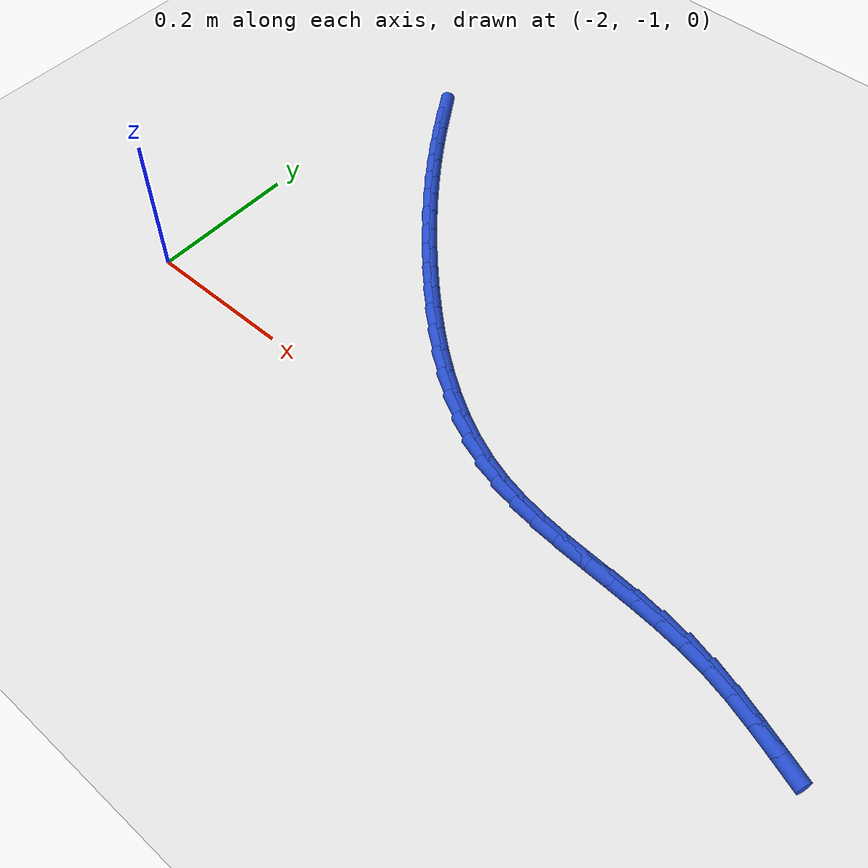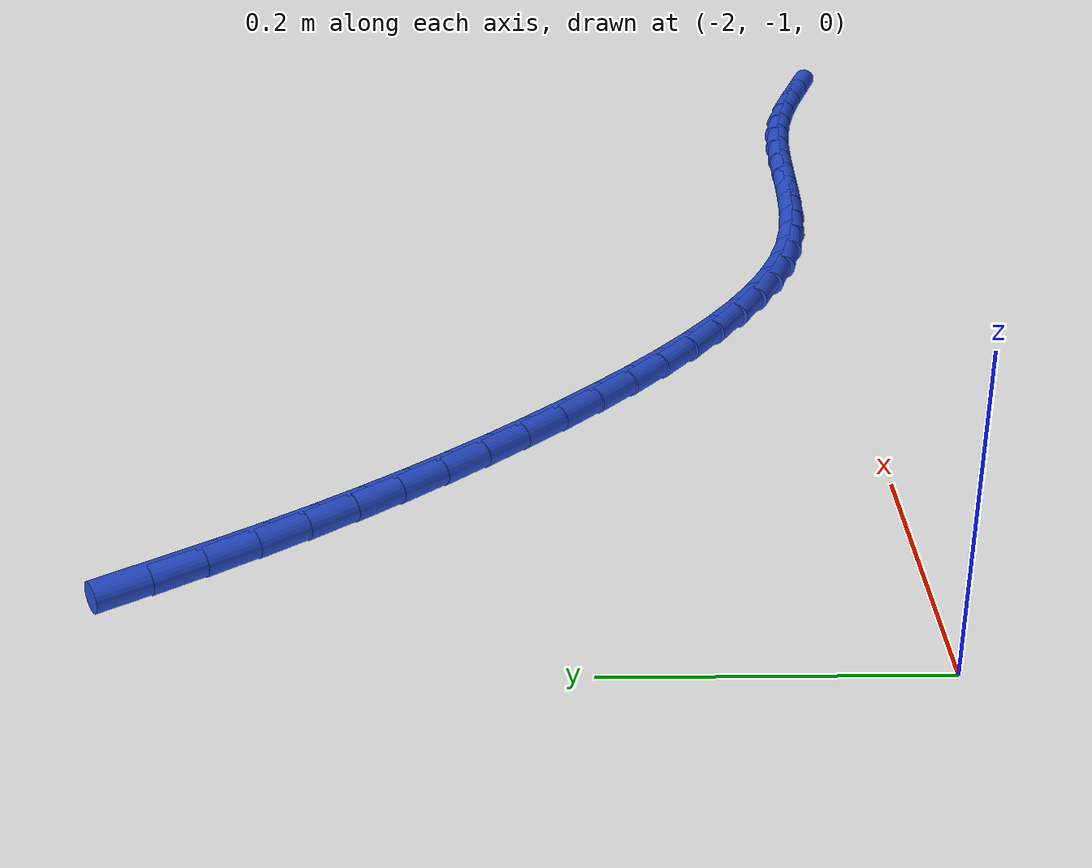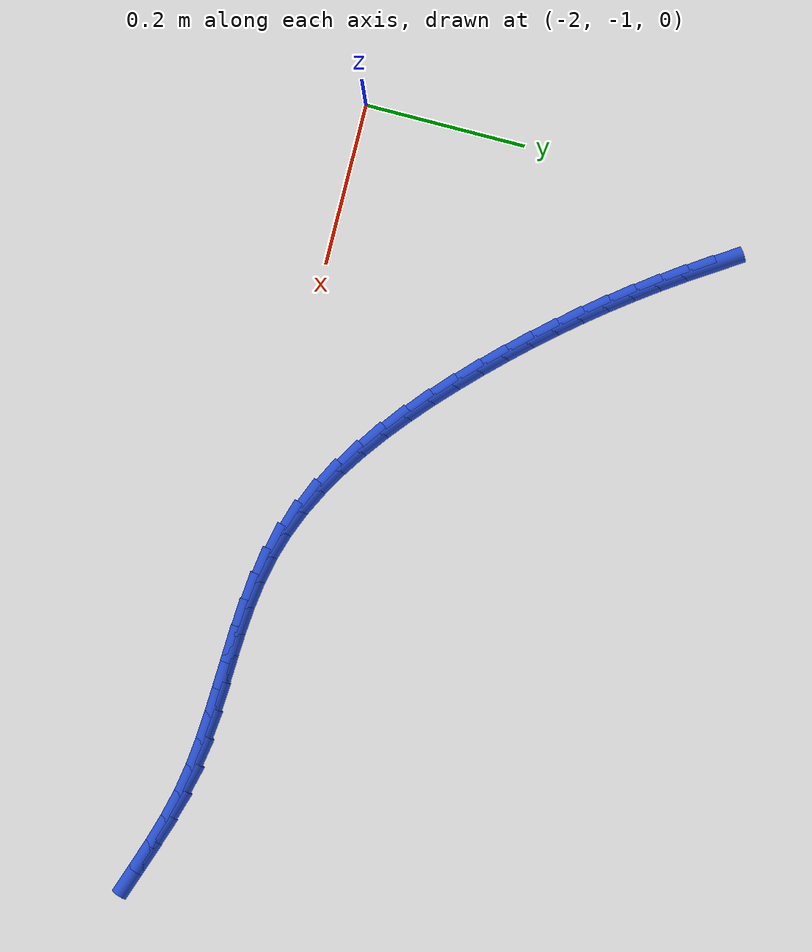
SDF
<sdf version="1.6">
 <world name="default">
  <model name="ground_plane">
   <static>1</static>
   <link name="link">
    <collision name="collision">
     <geometry><plane><normal>0 0 1</normal><size>100 100</size></plane></geometry>
     <surface><friction><ode><mu>100</mu><mu2>50</mu2></ode></friction></surface>
    </collision>
    <visual name="visual">
     <cast_shadows>0</cast_shadows>
     <geometry><plane><normal>0 0 1</normal><size>100 100</size></plane></geometry>
     <material>
      <script><uri>file://media/materials/scripts/gazebo.material</uri><name>Gazebo/WhiteGlow</name></script>
     </material>
    </visual>
   </link>
  </model>
  <model name="line">
   <link name="link_111">
    <pose>-1.9143856149538372 -0.5440257737730076 0.01 0 1.57 -0.9950030704382614</pose>
    <collision name="collision">
     <geometry><cylinder><radius>0.01</radius><length>0.08</length></cylinder></geometry>
    </collision>
    <visual name="visual">
     <material>
      <script><name>Gazebo/Blue</name><uri>file://media/materials/scripts/gazebo.material</uri></script>
     </material>
     <geometry><cylinder><radius>0.01</radius><length>0.08</length></cylinder></geometry>
    </visual>
   </link>
   <link name="link_112">
    <pose>-1.895645241447829 -0.5728938703207692 0.01 0 1.57 -0.9721743037767574</pose>
    <collision name="collision">
     <geometry><cylinder><radius>0.01</radius><length>0.08</length></cylinder></geometry>
    </collision>
    <visual name="visual">
     <material>
      <script><name>Gazebo/Blue</name><uri>file://media/materials/scripts/gazebo.material</uri></script>
     </material>
     <geometry><cylinder><radius>0.01</radius><length>0.08</length></cylinder></geometry>
    </visual>
   </link>
   <link name="link_113">
    <pose>-1.8763509122130106 -0.6011798735566575 0.01 0 1.57 -0.9489724081350819</pose>
    <collision name="collision">
     <geometry><cylinder><radius>0.01</radius><length>0.08</length></cylinder></geometry>
    </collision>
    <visual name="visual">
     <material>
      <script><name>Gazebo/Blue</name><uri>file://media/materials/scripts/gazebo.material</uri></script>
     </material>
     <geometry><cylinder><radius>0.01</radius><length>0.08</length></cylinder></geometry>
    </visual>
   </link>
   <link name="link_114">
    <pose>-1.8564735999047404 -0.6289156797982957 0.01 0 1.57 -0.9255059877517859</pose>
    <collision name="collision">
     <geometry><cylinder><radius>0.01</radius><length>0.08</length></cylinder></geometry>
    </collision>
    <visual name="visual">
     <material>
      <script><name>Gazebo/Blue</name><uri>file://media/materials/scripts/gazebo.material</uri></script>
     </material>
     <geometry><cylinder><radius>0.01</radius><length>0.08</length></cylinder></geometry>
    </visual>
   </link>
   <link name="link_115">
    <pose>-1.835984277178377 -0.6561331853633077 0.01 0 1.57 -0.9018882095244813</pose>
    <collision name="collision">
     <geometry><cylinder><radius>0.01</radius><length>0.08</length></cylinder></geometry>
    </collision>
    <visual name="visual">
     <material>
      <script><name>Gazebo/Blue</name><uri>file://media/materials/scripts/gazebo.material</uri></script>
     </material>
     <geometry><cylinder><radius>0.01</radius><length>0.08</length></cylinder></geometry>
    </visual>
   </link>
   <link name="link_116">
    <pose>-1.8148539166892776 -0.6828642865693173 0.01 0 1.57 -0.8782346337224162</pose>
    <collision name="collision">
     <geometry><cylinder><radius>0.01</radius><length>0.08</length></cylinder></geometry>
    </collision>
    <visual name="visual">
     <material>
      <script><name>Gazebo/Blue</name><uri>file://media/materials/scripts/gazebo.material</uri></script>
     </material>
     <geometry><cylinder><radius>0.01</radius><length>0.08</length></cylinder></geometry>
    </visual>
   </link>
   <link name="link_117">
    <pose>-1.7930534910928024 -0.7091408797339489 0.01 0 1.57 -0.8546609376189348</pose>
    <collision name="collision">
     <geometry><cylinder><radius>0.01</radius><length>0.08</length></cylinder></geometry>
    </collision>
    <visual name="visual">
     <material>
      <script><name>Gazebo/Blue</name><uri>file://media/materials/scripts/gazebo.material</uri></script>
     </material>
     <geometry><cylinder><radius>0.01</radius><length>0.08</length></cylinder></geometry>
    </visual>
   </link>
   <link name="link_118">
    <pose>-1.7705539730443092 -0.7349948611748257 0.01 0 1.57 -0.8312806378524545</pose>
    <collision name="collision">
     <geometry><cylinder><radius>0.01</radius><length>0.08</length></cylinder></geometry>
    </collision>
    <visual name="visual">
     <material>
      <script><name>Gazebo/Blue</name><uri>file://media/materials/scripts/gazebo.material</uri></script>
     </material>
     <geometry><cylinder><radius>0.01</radius><length>0.08</length></cylinder></geometry>
    </visual>
   </link>
   <link name="link_119">
    <pose>-1.7473263351991564 -0.7604581272095727 0.01 0 1.57 -0.8082029173738624</pose>
    <collision name="collision">
     <geometry><cylinder><radius>0.01</radius><length>0.08</length></cylinder></geometry>
    </collision>
    <visual name="visual">
     <material>
      <script><name>Gazebo/Blue</name><uri>file://media/materials/scripts/gazebo.material</uri></script>
     </material>
     <geometry><cylinder><radius>0.01</radius><length>0.08</length></cylinder></geometry>
    </visual>
   </link>
   <link name="link_120">
    <pose>-1.7233415502127016 -0.7855625741558135 0.01 0 1.57 -0.7854421807367972</pose>
    <collision name="collision">
     <geometry><cylinder><radius>0.01</radius><length>0.08</length></cylinder></geometry>
    </collision>
    <visual name="visual">
     <material>
      <script><name>Gazebo/Blue</name><uri>file://media/materials/scripts/gazebo.material</uri></script>
     </material>
     <geometry><cylinder><radius>0.01</radius><length>0.08</length></cylinder></geometry>
    </visual>
   </link>
   <link name="link_121">
    <pose>-1.698571055749104 -0.810335249377925 0.01 0 1.57 -0.7603612839941395</pose>
    <collision name="collision">
     <geometry><cylinder><radius>0.01</radius><length>0.08</length></cylinder></geometry>
    </collision>
    <visual name="visual">
     <material>
      <script><name>Gazebo/Blue</name><uri>file://media/materials/scripts/gazebo.material</uri></script>
     </material>
     <geometry><cylinder><radius>0.01</radius><length>0.08</length></cylinder></geometry>
    </visual>
   </link>
   <link name="link_122">
    <pose>-1.6730003529587951 -0.8346565509992507 0.01 0 1.57 -0.7296373215239756</pose>
    <collision name="collision">
     <geometry><cylinder><radius>0.01</radius><length>0.08</length></cylinder></geometry>
    </collision>
    <visual name="visual">
     <material>
      <script><name>Gazebo/Blue</name><uri>file://media/materials/scripts/gazebo.material</uri></script>
     </material>
     <geometry><cylinder><radius>0.01</radius><length>0.08</length></cylinder></geometry>
    </visual>
   </link>
   <link name="link_123">
    <pose>-1.6466311793925577 -0.8582375694948543 0.01 0 1.57 -0.6926689197947699</pose>
    <collision name="collision">
     <geometry><cylinder><radius>0.01</radius><length>0.08</length></cylinder></geometry>
    </collision>
    <visual name="visual">
     <material>
      <script><name>Gazebo/Blue</name><uri>file://media/materials/scripts/gazebo.material</uri></script>
     </material>
     <geometry><cylinder><radius>0.01</radius><length>0.08</length></cylinder></geometry>
    </visual>
   </link>
   <link name="link_124">
    <pose>-1.6194661750068495 -0.8807799853609911 0.01 0 1.57 -0.648900846392343</pose>
    <collision name="collision">
     <geometry><cylinder><radius>0.01</radius><length>0.08</length></cylinder></geometry>
    </collision>
    <visual name="visual">
     <material>
      <script><name>Gazebo/Blue</name><uri>file://media/materials/scripts/gazebo.material</uri></script>
     </material>
     <geometry><cylinder><radius>0.01</radius><length>0.08</length></cylinder></geometry>
    </visual>
   </link>
   <link name="link_125">
    <pose>-1.5915079797581295 -0.9019854790939161 0.01 0 1.57 -0.597678475880425</pose>
    <collision name="collision">
     <geometry><cylinder><radius>0.01</radius><length>0.08</length></cylinder></geometry>
    </collision>
    <visual name="visual">
     <material>
      <script><name>Gazebo/Blue</name><uri>file://media/materials/scripts/gazebo.material</uri></script>
     </material>
     <geometry><cylinder><radius>0.01</radius><length>0.08</length></cylinder></geometry>
    </visual>
   </link>
   <link name="link_126">
    <pose>-1.562759233602856 -0.9215557311898863 0.01 0 1.57 -0.5382932289902106</pose>
    <collision name="collision">
     <geometry><cylinder><radius>0.01</radius><length>0.08</length></cylinder></geometry>
    </collision>
    <visual name="visual">
     <material>
      <script><name>Gazebo/Blue</name><uri>file://media/materials/scripts/gazebo.material</uri></script>
     </material>
     <geometry><cylinder><radius>0.01</radius><length>0.08</length></cylinder></geometry>
    </visual>
   </link>
   <link name="link_127">
    <pose>-1.5332225764974892 -0.9391924221451566 0.01 0 1.57 -0.47006042147608235</pose>
    <collision name="collision">
     <geometry><cylinder><radius>0.01</radius><length>0.08</length></cylinder></geometry>
    </collision>
    <visual name="visual">
     <material>
      <script><name>Gazebo/Blue</name><uri>file://media/materials/scripts/gazebo.material</uri></script>
     </material>
     <geometry><cylinder><radius>0.01</radius><length>0.08</length></cylinder></geometry>
    </visual>
   </link>
   <link name="link_128">
    <pose>-1.5029006483984868 -0.9545972324559828 0.01 0 1.57 -0.39244329825378166</pose>
    <collision name="collision">
     <geometry><cylinder><radius>0.01</radius><length>0.08</length></cylinder></geometry>
    </collision>
    <visual name="visual">
     <material>
      <script><name>Gazebo/Blue</name><uri>file://media/materials/scripts/gazebo.material</uri></script>
     </material>
     <geometry><cylinder><radius>0.01</radius><length>0.08</length></cylinder></geometry>
    </visual>
   </link>
   <link name="link_129">
    <pose>-1.4717960892623085 -0.9674718426186206 0.01 0 1.57 -0.3052532861984801</pose>
    <collision name="collision">
     <geometry><cylinder><radius>0.01</radius><length>0.08</length></cylinder></geometry>
    </collision>
    <visual name="visual">
     <material>
      <script><name>Gazebo/Blue</name><uri>file://media/materials/scripts/gazebo.material</uri></script>
     </material>
     <geometry><cylinder><radius>0.01</radius><length>0.08</length></cylinder></geometry>
    </visual>
   </link>
   <link name="link_130">
    <pose>-1.4399116326674373 -0.977518687151683 0.01 0 1.57 -0.21614035548010685</pose>
    <collision name="collision">
     <geometry><cylinder><radius>0.01</radius><length>0.08</length></cylinder></geometry>
    </collision>
    <visual name="visual">
     <material>
      <script><name>Gazebo/Blue</name><uri>file://media/materials/scripts/gazebo.material</uri></script>
     </material>
     <geometry><cylinder><radius>0.01</radius><length>0.08</length></cylinder></geometry>
    </visual>
   </link>
   <link name="link_131">
    <pose>-1.407280230068295 -0.9846835723026276 0.01 0 1.57 -0.14386438074132676</pose>
    <collision name="collision">
     <geometry><cylinder><radius>0.01</radius><length>0.08</length></cylinder></geometry>
    </collision>
    <visual name="visual">
     <material>
      <script><name>Gazebo/Blue</name><uri>file://media/materials/scripts/gazebo.material</uri></script>
     </material>
     <geometry><cylinder><radius>0.01</radius><length>0.08</length></cylinder></geometry>
    </visual>
   </link>
   <link name="link_132">
    <pose>-1.3740082409467183 -0.9895035251770637 0.01 0 1.57 -0.09147557535720244</pose>
    <collision name="collision">
     <geometry><cylinder><radius>0.01</radius><length>0.08</length></cylinder></geometry>
    </collision>
    <visual name="visual">
     <material>
      <script><name>Gazebo/Blue</name><uri>file://media/materials/scripts/gazebo.material</uri></script>
     </material>
     <geometry><cylinder><radius>0.01</radius><length>0.08</length></cylinder></geometry>
    </visual>
   </link>
   <link name="link_133">
    <pose>-1.340212957021709 -0.9926036200174934 0.01 0 1.57 -0.05856556902464326</pose>
    <collision name="collision">
     <geometry><cylinder><radius>0.01</radius><length>0.08</length></cylinder></geometry>
    </collision>
    <visual name="visual">
     <material>
      <script><name>Gazebo/Blue</name><uri>file://media/materials/scripts/gazebo.material</uri></script>
     </material>
     <geometry><cylinder><radius>0.01</radius><length>0.08</length></cylinder></geometry>
    </visual>
   </link>
   <link name="link_134">
    <pose>-1.3060116700122693 -0.9946089310664161 0.01 0 1.57 -0.0444937112199723</pose>
    <collision name="collision">
     <geometry><cylinder><radius>0.01</radius><length>0.08</length></cylinder></geometry>
    </collision>
    <visual name="visual">
     <material>
      <script><name>Gazebo/Blue</name><uri>file://media/materials/scripts/gazebo.material</uri></script>
     </material>
     <geometry><cylinder><radius>0.01</radius><length>0.08</length></cylinder></geometry>
    </visual>
   </link>
   <link name="link_135">
    <pose>-1.2715216716374023 -0.996144532566334 0.01 0 1.57 -0.04874660939137345</pose>
    <collision name="collision">
     <geometry><cylinder><radius>0.01</radius><length>0.08</length></cylinder></geometry>
    </collision>
    <visual name="visual">
     <material>
      <script><name>Gazebo/Blue</name><uri>file://media/materials/scripts/gazebo.material</uri></script>
     </material>
     <geometry><cylinder><radius>0.01</radius><length>0.08</length></cylinder></geometry>
    </visual>
   </link>
   <link name="link_136">
    <pose>-1.2368602536161095 -0.9978354987597471 0.01 0 1.57 -0.07107025550663781</pose>
    <collision name="collision">
     <geometry><cylinder><radius>0.01</radius><length>0.08</length></cylinder></geometry>
    </collision>
    <visual name="visual">
     <material>
      <script><name>Gazebo/Blue</name><uri>file://media/materials/scripts/gazebo.material</uri></script>
     </material>
     <geometry><cylinder><radius>0.01</radius><length>0.08</length></cylinder></geometry>
    </visual>
   </link>
   <link name="link_137">
    <pose>-1.2021447076673941 -1.000306903889157 0.01 0 1.57 -0.1114169482223777</pose>
    <collision name="collision">
     <geometry><cylinder><radius>0.01</radius><length>0.08</length></cylinder></geometry>
    </collision>
    <visual name="visual">
     <material>
      <script><name>Gazebo/Blue</name><uri>file://media/materials/scripts/gazebo.material</uri></script>
     </material>
     <geometry><cylinder><radius>0.01</radius><length>0.08</length></cylinder></geometry>
    </visual>
   </link>
   <link name="link_138">
    <pose>-1.1674923255102583 -1.004183822197064 0.01 0 1.57 -0.16972282996792265</pose>
    <collision name="collision">
     <geometry><cylinder><radius>0.01</radius><length>0.08</length></cylinder></geometry>
    </collision>
    <visual name="visual">
     <material>
      <script><name>Gazebo/Blue</name><uri>file://media/materials/scripts/gazebo.material</uri></script>
     </material>
     <geometry><cylinder><radius>0.01</radius><length>0.08</length></cylinder></geometry>
    </visual>
   </link>
   <link name="link_139">
    <pose>-1.1330203988637055 -1.01009132792597 0.01 0 1.57 -0.2411461873965816</pose>
    <collision name="collision">
     <geometry><cylinder><radius>0.01</radius><length>0.08</length></cylinder></geometry>
    </collision>
    <visual name="visual">
     <material>
      <script><name>Gazebo/Blue</name><uri>file://media/materials/scripts/gazebo.material</uri></script>
     </material>
     <geometry><cylinder><radius>0.01</radius><length>0.08</length></cylinder></geometry>
    </visual>
   </link>
   <link name="link_140">
    <pose>-1.0988335554662694 -1.018498962333097 0.01 0 1.57 -0.29767804407295023</pose>
    <collision name="collision">
     <geometry><cylinder><radius>0.01</radius><length>0.08</length></cylinder></geometry>
    </collision>
    <visual name="visual">
     <material>
      <script><name>Gazebo/Blue</name><uri>file://media/materials/scripts/gazebo.material</uri></script>
     </material>
     <geometry><cylinder><radius>0.01</radius><length>0.08</length></cylinder></geometry>
    </visual>
   </link>
   <link name="link_141">
    <pose>-1.0649563051845432 -1.0288922970754497 0.01 0 1.57 -0.32949012639443476</pose>
    <collision name="collision">
     <geometry><cylinder><radius>0.01</radius><length>0.08</length></cylinder></geometry>
    </collision>
    <visual name="visual">
     <material>
      <script><name>Gazebo/Blue</name><uri>file://media/materials/scripts/gazebo.material</uri></script>
     </material>
     <geometry><cylinder><radius>0.01</radius><length>0.08</length></cylinder></geometry>
    </visual>
   </link>
   <link name="link_142">
    <pose>-1.0313819184295905 -1.0403732356742965 0.01 0 1.57 -0.3372679509637107</pose>
    <collision name="collision">
     <geometry><cylinder><radius>0.01</radius><length>0.08</length></cylinder></geometry>
    </collision>
    <visual name="visual">
     <material>
      <script><name>Gazebo/Blue</name><uri>file://media/materials/scripts/gazebo.material</uri></script>
     </material>
     <geometry><cylinder><radius>0.01</radius><length>0.08</length></cylinder></geometry>
    </visual>
   </link>
  </model>
 </world>
</sdf>
